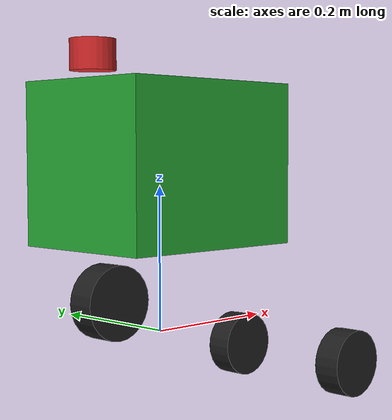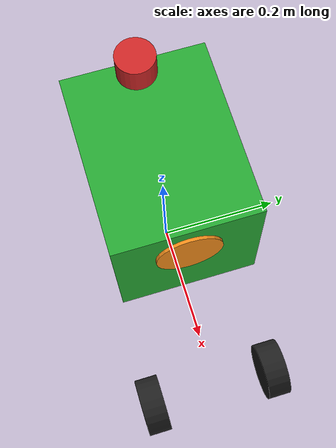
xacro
<?xml version="1.0"?>
<!-- Basic differential drive mobile base -->
<robot xmlns:xacro="http://www.ros.org/wiki/xacro" name="diffdrive_robot">
  <xacro:arg name="prefix" default="" />

  <xacro:include filename="$(find ros2_ddsm115)/urdf/inertial_macros.xacro" />
  <xacro:include filename="$(find ros2_ddsm115)/urdf/materials.xacro" />
  <xacro:include filename="$(find ros2_ddsm115)/urdf/kartyb_description_diffdrive.urdf.xacro" />
  <xacro:include filename="$(find ros2_ddsm115)/urdf/kartyb_face.urdf.xacro" />

  <xacro:include filename="$(find ros2_ddsm115)/urdf/lidar.xacro" />

  <!-- Import diffbot ros2_control description -->
  <xacro:include filename="$(find ros2_ddsm115)/ros2_control/diffbot.ros2_control.xacro" />

  <xacro:diffbot prefix="$(arg prefix)" />

</robot>

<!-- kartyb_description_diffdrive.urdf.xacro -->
<robot xmlns:xacro="http://www.ros.org/wiki/xacro">

  <xacro:macro name="diffbot" params="prefix">

  <!-- Constants for robot dimensions -->
  <xacro:property name="PI" value="3.1415926535897931"/>
  <xacro:property name="chassis_mass" value="0.8" /> <!-- arbitrary value for base mass -->
  <xacro:property name="chassis_width" value="0.22" />
  <xacro:property name="chassis_length" value="0.28" />
  <xacro:property name="chassis_height" value="0.22" />
  <xacro:property name="chassis_base_offset" value="0.12" />
  <xacro:property name="wheel_mass" value="0.3" /> <!-- arbitrary value for wheel mass -->
  <xacro:property name="wheel_len" value="0.040" />
  <xacro:property name="wheel_radius" value="0.05" />
  <xacro:property name="wheel_pos_front" value="0.10" />
  <xacro:property name="wheel_pos_rear" value="0.10" />
  <xacro:property name="wheel_pivot_pos_front" value="0.12" />
  <xacro:property name="z_offset" value="-${chassis_height/2}" /> <!-- Space btw top of beam and the each joint -->

  <!-- Base Link -->
  <link name="base_link">
  </link>

  <!-- BASE_FOOTPRINT LINK -->
  <joint name="base_footprint_joint" type="fixed">
      <parent link="base_link"/>
      <child link="base_footprint"/>
      <origin xyz="0 0 0" rpy="0 0 0"/>
  </joint>

  <link name="base_footprint">
  </link>

  <!-- Chassis Link -->
  <joint name="chassis_joint" type="fixed">
    <parent link="base_link"/>
    <child link="chassis"/>
    <origin xyz="${-chassis_length/2} 0 ${chassis_base_offset}"/>
  </joint>

  <link name="chassis">
    <visual>
        <origin xyz="${chassis_length/2} 0 ${chassis_height/2}"/>
        <geometry>
            <box size="${chassis_length} ${chassis_width} ${chassis_height}"/>
        </geometry>
        <material name="green"/>
    </visual>
    <collision>
          <origin xyz="${chassis_length/2} 0 ${chassis_height/2}"/>
        <geometry>
            <box size="${chassis_length} ${chassis_width} ${chassis_height}"/>
        </geometry>
    </collision>
    <xacro:inertial_box mass="${chassis_mass}" x="${chassis_length}" y="${chassis_width}" z="${chassis_height}">
      <origin xyz="${chassis_length/2} 0 ${chassis_height/2}" rpy="0 0 0"/>
    </xacro:inertial_box>
  </link>

  <gazebo reference="chassis">
      <material>Gazebo/Green</material>
  </gazebo>

  <!-- left wheel front Link -->
  <joint name="left_wheel_joint" type="continuous">
    <parent link="base_link"/>
    <child link="left_wheel"/>
    <origin xyz="${chassis_length} ${chassis_width/2} -0.07" rpy="-${PI/2} 0 0"/>
    <axis xyz="0 0 -1"/>
  </joint>

  <link name="left_wheel">
    <visual>
      <geometry>
        <cylinder length="${wheel_len}" radius="${wheel_radius}"/>
      </geometry>
      <material name="black"/>
    </visual>
    <collision>
      <geometry>
        <cylinder length="${wheel_len}" radius="${wheel_radius}"/>
      </geometry>
    </collision>
    <xacro:inertial_cylinder mass="${wheel_mass}" length="${wheel_len}" radius="${wheel_radius}">
          <origin xyz="0 0 0" rpy="0 0 0"/>
    </xacro:inertial_cylinder>
  </link>

  <gazebo reference="left_wheel">
      <material>Gazebo/Black</material>
  </gazebo>

  <!-- right wheel front Link -->
  <joint name="right_wheel_joint" type="continuous">
    <parent link="base_link"/>
    <child link="right_wheel"/>
    <origin xyz="${chassis_length} ${-chassis_width/2} -0.07" rpy="${PI/2} 0 0"/>
    <axis xyz="0 0 -1"/>
  </joint>

  <link name="right_wheel">
    <visual>
      <geometry>
        <cylinder length="${wheel_len}" radius="${wheel_radius}"/>
      </geometry>
      <material name="black"/>
    </visual>
    <collision>
      <geometry>
        <cylinder length="${wheel_len}" radius="${wheel_radius}"/>
      </geometry>
    </collision>
    <xacro:inertial_cylinder mass="${wheel_mass}" length="${wheel_len}" radius="${wheel_radius}">
          <origin xyz="0 0 0" rpy="0 0 0"/>
    </xacro:inertial_cylinder>
  </link>

  <gazebo reference="right_wheel">
      <material>Gazebo/Black</material>
  </gazebo>

  <!-- rear caster Link -->
  <joint name="caster_wheel_joint" type="fixed">
    <parent link="chassis"/>
    <child link="caster_wheel"/>
    <origin xyz="${wheel_radius} 0 -0.07" rpy="-${PI/2} 0 0"/>
    <axis xyz="0 0 -1"/>
  </joint>

  <link name="caster_wheel">
    <visual>
      <geometry>
        <cylinder length="${wheel_len}" radius="${wheel_radius}"/>
      </geometry>
      <material name="black"/>
    </visual>
    <collision>
      <geometry>
        <cylinder length="${wheel_len}" radius="${wheel_radius}"/>
      </geometry>
    </collision>
    <xacro:inertial_cylinder mass="${wheel_mass}" length="${wheel_len}" radius="${wheel_radius}">
          <origin xyz="0 0 0" rpy="0 0 0"/>
    </xacro:inertial_cylinder>
  </link>

  <gazebo reference="caster_wheel">
      <material>Gazebo/Black</material>
      <mu1 value="0.001"/>
      <mu2 value="0.001"/>
  </gazebo>

  </xacro:macro>

</robot>

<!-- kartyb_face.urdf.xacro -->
<robot xmlns:xacro="http://www.ros.org/wiki/xacro">

  <xacro:property name="PI" value="3.1415926535897931"/>
  <xacro:property name="chassis_width" value="0.22" />
  <xacro:property name="chassis_length" value="0.28" />
  <xacro:property name="chassis_height" value="0.22" />

  <!-- kartyB Face Link -->
  <joint name="face_joint" type="fixed">
    <parent link="chassis"/>
    <child link="face"/>
    <origin xyz="${chassis_length} 0 0.15" rpy="0 -${PI/2} 0"/>
    <axis xyz="0 0 -1"/>
  </joint>

  <link name="face">
    <visual>
      <geometry>
        <cylinder length="0.01" radius="0.05"/>
      </geometry>
      <material name="orange"/>
    </visual>
    <collision>
      <geometry>
        <cylinder length="0.01" radius="0.05"/>
      </geometry>
    </collision>
    <xacro:inertial_cylinder mass="0.01" length="0.01" radius="0.05">
          <origin xyz="0 0 0" rpy="0 0 0"/>
    </xacro:inertial_cylinder>
  </link>

  <gazebo reference="face">
      <material>Gazebo/Orange</material>
      <mu1 value="0.001"/>
      <mu2 value="0.001"/>
  </gazebo>

</robot>

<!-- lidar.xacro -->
<robot xmlns:xacro="http://www.ros.org/wiki/xacro" >

    <xacro:property name="PI" value="3.1415926535897931"/>
    <xacro:property name="chassis_width" value="0.22" />
    <xacro:property name="chassis_length" value="0.28" />
    <xacro:property name="chassis_height" value="0.22" />

    <joint name="laser_joint" type="fixed">
        <parent link="chassis"/>
        <child link="laser_frame"/>
        <origin xyz="0.025 0 ${chassis_height + 0.03}" rpy="0 0 -${PI/2}"/>
    </joint>

    <link name="laser_frame">
        <visual>
            <geometry>
                <cylinder radius="0.03" length="0.04"/>
            </geometry>
            <material name="red"/>
        </visual>
        <collision>
            <geometry>
                <cylinder radius="0.03" length="0.04"/>
            </geometry>
        </collision>
        <xacro:inertial_cylinder mass="0.1" length="0.04" radius="0.03">
            <origin xyz="0 0 0" rpy="0 0 0"/>
        </xacro:inertial_cylinder>
    </link>

    <gazebo reference="laser_frame">
        <material>Gazebo/Red</material>

        <sensor name="laser" type="ray">
            <pose> 0 0 0 0 0 0 </pose>
            <visualize>true</visualize>
            <update_rate>10</update_rate>
            <ray>
                <scan>
                    <horizontal>
                        <samples>360</samples>
                        <min_angle>-3.14</min_angle>
                        <max_angle>3.14</max_angle>
                    </horizontal>
                </scan>
                <range>
                    <min>0.3</min>
                    <max>4</max>
                </range>
            </ray>
            <plugin name="laser_controller" filename="libgazebo_ros_ray_sensor.so">
                <ros>
                    <argument>~/out:=scan</argument>
                </ros>
                <output_type>sensor_msgs/LaserScan</output_type>
                <frame_name>laser_frame</frame_name>
            </plugin>
        </sensor>
    </gazebo>

</robot>
